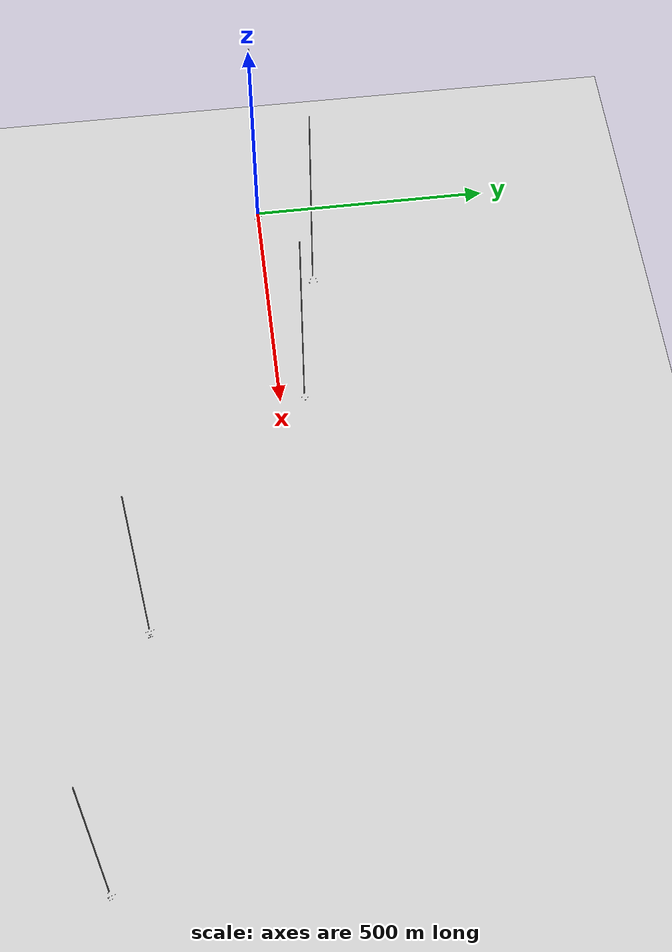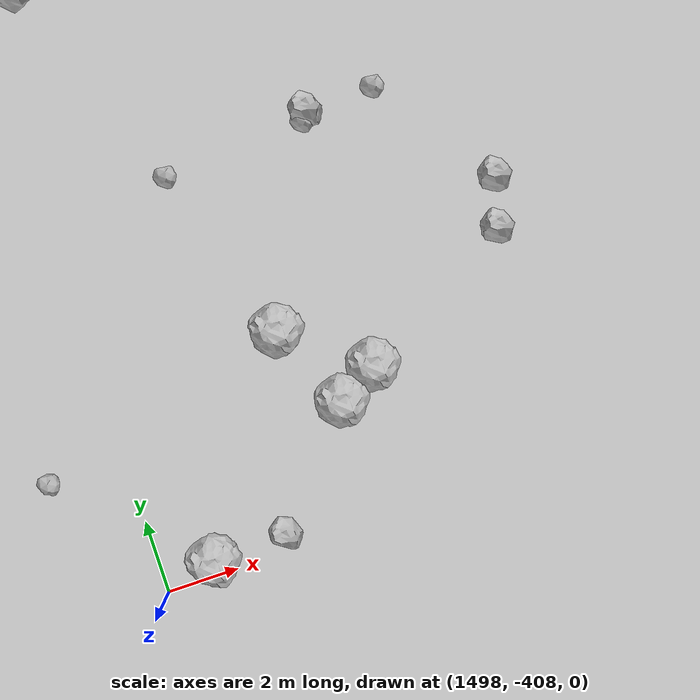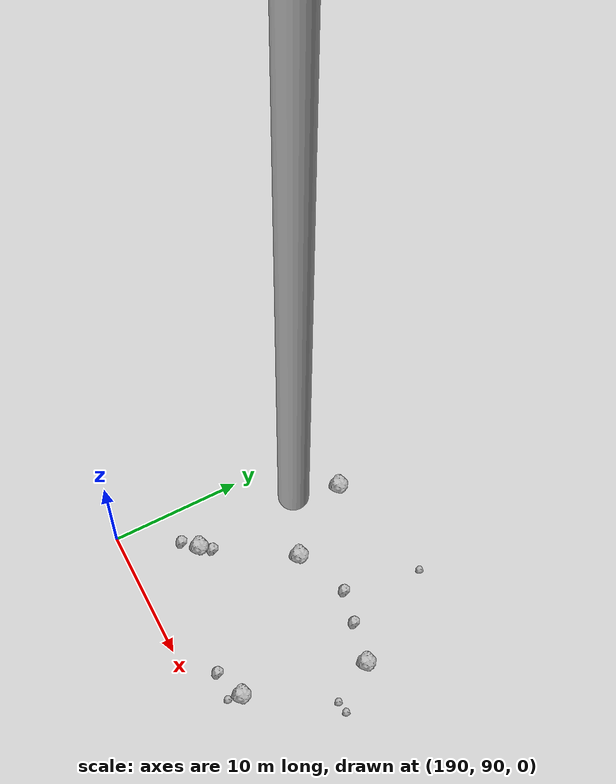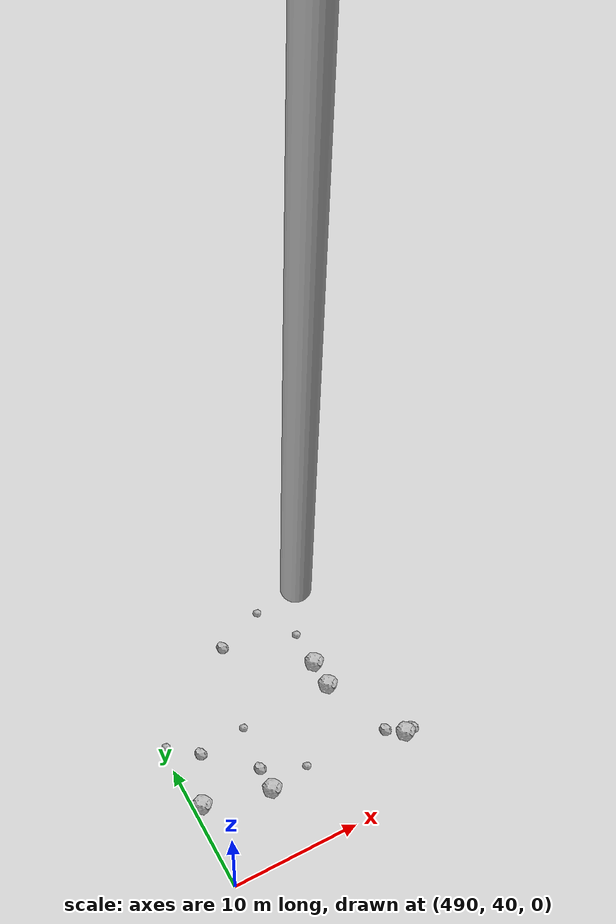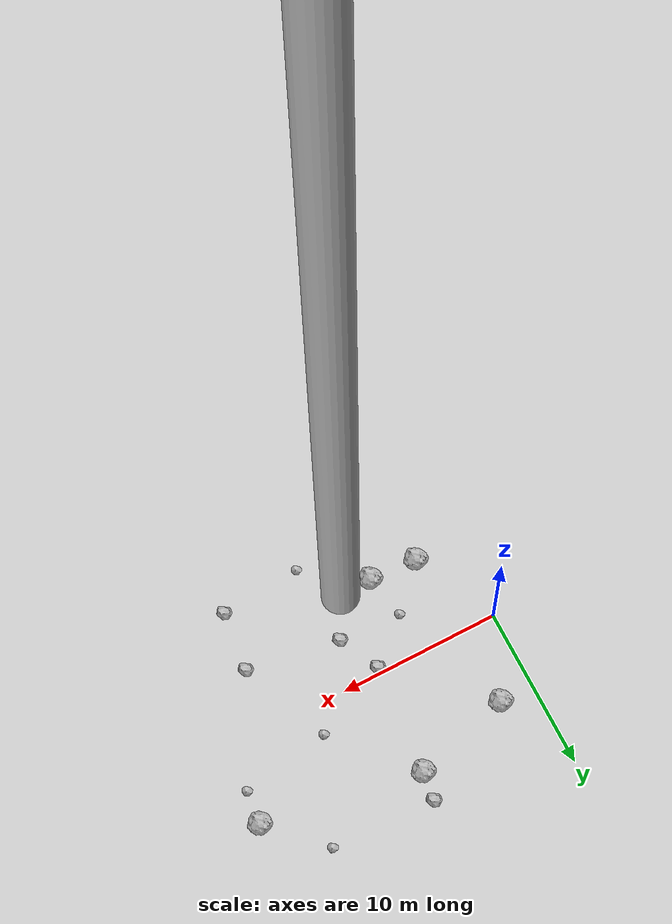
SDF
<?xml version="1.0" ?>
<sdf version="1.6">
  <world name="default">

    <include>
      <uri>model://custom_ground</uri>
    </include>

    <include>
      <uri>model://sun</uri>
    </include>

    <spherical_coordinates>
      <surface_model>EARTH_WGS84</surface_model>
      <latitude_deg>38.161479</latitude_deg>
      <longitude_deg>-122.454630</longitude_deg>
      <elevation>488.0</elevation>
      <heading_deg>90</heading_deg>
    </spherical_coordinates>

    <model name="rock1_0_0">
      <include>
        <uri>model://rock1</uri>
        <pose>2.49691382914639 -5.185970993650804 0.5 0 0 0</pose>
      </include>
    </model>
    <model name="rock1_0_1">
      <include>
        <uri>model://rock1</uri>
        <pose>5.457030801072622 -5.377328507619794 0.5 0 0 0</pose>
      </include>
    </model>
    <model name="rock1_0_2">
      <include>
        <uri>model://rock1</uri>
        <pose>18.023192851284488 4.771931585657557 0.5 0 0 0</pose>
      </include>
    </model>
    <model name="rock1_0_3">
      <include>
        <uri>model://rock1</uri>
        <pose>8.192478007171808 6.452641437040647 0.5 0 0 0</pose>
      </include>
    </model>
    <model name="rock1_0_4">
      <include>
        <uri>model://rock1</uri>
        <pose>2.1853988610647757 4.833900528092201 0.5 0 0 0</pose>
      </include>
    </model>
    <model name="rock2_0_0">
      <include>
        <uri>model://rock2</uri>
        <pose>8.403162183985184 8.225374960065182 0.3 0 0 0</pose>
      </include>
    </model>
    <model name="rock2_0_1">
      <include>
        <uri>model://rock2</uri>
        <pose>14.108420379822707 -7.554718473559172 0.3 0 0 0</pose>
      </include>
    </model>
    <model name="rock2_0_2">
      <include>
        <uri>model://rock2</uri>
        <pose>7.5663082122113074 -0.3660193078653684 0.3 0 0 0</pose>
      </include>
    </model>
    <model name="rock2_0_3">
      <include>
        <uri>model://rock2</uri>
        <pose>8.770806263497947 -2.886712398572689 0.3 0 0 0</pose>
      </include>
    </model>
    <model name="rock2_0_4">
      <include>
        <uri>model://rock2</uri>
        <pose>14.54697585942786 -3.8442471461178984 0.3 0 0 0</pose>
      </include>
    </model>
    <model name="rock3_0_0">
      <include>
        <uri>model://rock3</uri>
        <pose>4.873217700030741 -2.6784561590181095 0.2 0 0 0</pose>
      </include>
    </model>
    <model name="rock3_0_1">
      <include>
        <uri>model://rock3</uri>
        <pose>12.247655826506115 1.7380694075721124 0.2 0 0 0</pose>
      </include>
    </model>
    <model name="rock3_0_2">
      <include>
        <uri>model://rock3</uri>
        <pose>14.885690709837894 7.938822098273704 0.2 0 0 0</pose>
      </include>
    </model>
    <model name="rock3_0_3">
      <include>
        <uri>model://rock3</uri>
        <pose>9.071571451784424 -7.9811674118383324 0.2 0 0 0</pose>
      </include>
    </model>
    <model name="rock3_0_4">
      <include>
        <uri>model://rock3</uri>
        <pose>17.764236168002196 2.6600734198081426 0.2 0 0 0</pose>
      </include>
    </model>
    <model name="rock1_1_0">
      <include>
        <uri>model://rock1</uri>
        <pose>207.3088939812665 102.38550396893478 0.5 0 0 0</pose>
      </include>
    </model>
    <model name="rock1_1_1">
      <include>
        <uri>model://rock1</uri>
        <pose>197.56976707503367 101.72481515019122 0.5 0 0 0</pose>
      </include>
    </model>
    <model name="rock1_1_2">
      <include>
        <uri>model://rock1</uri>
        <pose>193.5329131800912 95.26961398625578 0.5 0 0 0</pose>
      </include>
    </model>
    <model name="rock1_1_3">
      <include>
        <uri>model://rock1</uri>
        <pose>193.83678306296355 107.03675688626724 0.5 0 0 0</pose>
      </include>
    </model>
    <model name="rock1_1_4">
      <include>
        <uri>model://rock1</uri>
        <pose>205.37977963935703 93.04475078943908 0.5 0 0 0</pose>
      </include>
    </model>
    <model name="rock2_1_0">
      <include>
        <uri>model://rock2</uri>
        <pose>204.08693382649764 103.01058529220414 0.3 0 0 0</pose>
      </include>
    </model>
    <model name="rock2_1_1">
      <include>
        <uri>model://rock2</uri>
        <pose>202.98960836901693 92.22037685920633 0.3 0 0 0</pose>
      </include>
    </model>
    <model name="rock2_1_2">
      <include>
        <uri>model://rock2</uri>
        <pose>201.5347245961518 103.50578626841413 0.3 0 0 0</pose>
      </include>
    </model>
    <model name="rock2_1_3">
      <include>
        <uri>model://rock2</uri>
        <pose>194.09497484959527 96.10364281308512 0.3 0 0 0</pose>
      </include>
    </model>
    <model name="rock2_1_4">
      <include>
        <uri>model://rock2</uri>
        <pose>192.50402078463404 94.26065421487472 0.3 0 0 0</pose>
      </include>
    </model>
    <model name="rock3_1_0">
      <include>
        <uri>model://rock3</uri>
        <pose>208.97839448446575 99.16722518880769 0.2 0 0 0</pose>
      </include>
    </model>
    <model name="rock3_1_1">
      <include>
        <uri>model://rock3</uri>
        <pose>205.15259126888688 91.98606452874236 0.2 0 0 0</pose>
      </include>
    </model>
    <model name="rock3_1_2">
      <include>
        <uri>model://rock3</uri>
        <pose>202.6079891121089 109.33978359242866 0.2 0 0 0</pose>
      </include>
    </model>
    <model name="rock3_1_3">
      <include>
        <uri>model://rock3</uri>
        <pose>192.45071091460144 104.0100305943953 0.2 0 0 0</pose>
      </include>
    </model>
    <model name="rock3_1_4">
      <include>
        <uri>model://rock3</uri>
        <pose>209.92185314933334 99.31396750585917 0.2 0 0 0</pose>
      </include>
    </model>
    <model name="rock1_2_0">
      <include>
        <uri>model://rock1</uri>
        <pose>495.8207878657438 45.22156913012449 0.5 0 0 0</pose>
      </include>
    </model>
    <model name="rock1_2_1">
      <include>
        <uri>model://rock1</uri>
        <pose>503.4784541092487 52.790306352747976 0.5 0 0 0</pose>
      </include>
    </model>
    <model name="rock1_2_2">
      <include>
        <uri>model://rock1</uri>
        <pose>506.7699317206543 44.52358139645293 0.5 0 0 0</pose>
      </include>
    </model>
    <model name="rock1_2_3">
      <include>
        <uri>model://rock1</uri>
        <pose>503.5121622606009 50.66062923466836 0.5 0 0 0</pose>
      </include>
    </model>
    <model name="rock1_2_4">
      <include>
        <uri>model://rock1</uri>
        <pose>490.6986967300618 46.49159591534028 0.5 0 0 0</pose>
      </include>
    </model>
    <model name="rock2_2_0">
      <include>
        <uri>model://rock2</uri>
        <pose>495.748395113199 47.10148067261539 0.3 0 0 0</pose>
      </include>
    </model>
    <model name="rock2_2_1">
      <include>
        <uri>model://rock2</uri>
        <pose>507.4166326457549 44.652899648090425 0.3 0 0 0</pose>
      </include>
    </model>
    <model name="rock2_2_2">
      <include>
        <uri>model://rock2</uri>
        <pose>505.51329567985 45.442415417846 0.3 0 0 0</pose>
      </include>
    </model>
    <model name="rock2_2_3">
      <include>
        <uri>model://rock2</uri>
        <pose>497.81069173069983 57.262734043941975 0.3 0 0 0</pose>
      </include>
    </model>
    <model name="rock2_2_4">
      <include>
        <uri>model://rock2</uri>
        <pose>492.38631331375336 50.1923417577717 0.3 0 0 0</pose>
      </include>
    </model>
    <model name="rock3_2_0">
      <include>
        <uri>model://rock3</uri>
        <pose>496.1663692521716 50.565347381348175 0.2 0 0 0</pose>
      </include>
    </model>
    <model name="rock3_2_1">
      <include>
        <uri>model://rock3</uri>
        <pose>498.9193570140547 45.65235782041193 0.2 0 0 0</pose>
      </include>
    </model>
    <model name="rock3_2_2">
      <include>
        <uri>model://rock3</uri>
        <pose>503.39826891307 55.591462556628365 0.2 0 0 0</pose>
      </include>
    </model>
    <model name="rock3_2_3">
      <include>
        <uri>model://rock3</uri>
        <pose>490.3271355117211 51.90150085727872 0.2 0 0 0</pose>
      </include>
    </model>
    <model name="rock3_2_4">
      <include>
        <uri>model://rock3</uri>
        <pose>501.5770716916819 58.67304508097959 0.2 0 0 0</pose>
      </include>
    </model>
    <model name="rock1_3_0">
      <include>
        <uri>model://rock1</uri>
        <pose>1007.3215007199846 -299.5825826830396 0.5 0 0 0</pose>
      </include>
    </model>
    <model name="rock1_3_1">
      <include>
        <uri>model://rock1</uri>
        <pose>1009.1699450173725 -302.83881617491096 0.5 0 0 0</pose>
      </include>
    </model>
    <model name="rock1_3_2">
      <include>
        <uri>model://rock1</uri>
        <pose>1001.9978518301585 -297.8128111907905 0.5 0 0 0</pose>
      </include>
    </model>
    <model name="rock1_3_3">
      <include>
        <uri>model://rock1</uri>
        <pose>1003.571412416109 -301.2047995261251 0.5 0 0 0</pose>
      </include>
    </model>
    <model name="rock1_3_4">
      <include>
        <uri>model://rock1</uri>
        <pose>993.8668292024942 -292.2579306276441 0.5 0 0 0</pose>
      </include>
    </model>
    <model name="rock2_3_0">
      <include>
        <uri>model://rock2</uri>
        <pose>996.3902798779815 -304.0495673317424 0.3 0 0 0</pose>
      </include>
    </model>
    <model name="rock2_3_1">
      <include>
        <uri>model://rock2</uri>
        <pose>1003.0135563670625 -302.3813381797902 0.3 0 0 0</pose>
      </include>
    </model>
    <model name="rock2_3_2">
      <include>
        <uri>model://rock2</uri>
        <pose>996.945126039694 -308.05534467261793 0.3 0 0 0</pose>
      </include>
    </model>
    <model name="rock2_3_3">
      <include>
        <uri>model://rock2</uri>
        <pose>996.2365026513702 -304.99173465467027 0.3 0 0 0</pose>
      </include>
    </model>
    <model name="rock2_3_4">
      <include>
        <uri>model://rock2</uri>
        <pose>995.5463539877965 -297.366567001055 0.3 0 0 0</pose>
      </include>
    </model>
    <model name="rock3_3_0">
      <include>
        <uri>model://rock3</uri>
        <pose>994.0513444842791 -298.9441081810705 0.2 0 0 0</pose>
      </include>
    </model>
    <model name="rock3_3_1">
      <include>
        <uri>model://rock3</uri>
        <pose>1003.9341682830229 -292.0616793664127 0.2 0 0 0</pose>
      </include>
    </model>
    <model name="rock3_3_2">
      <include>
        <uri>model://rock3</uri>
        <pose>994.9755594773676 -307.9022392662633 0.2 0 0 0</pose>
      </include>
    </model>
    <model name="rock3_3_3">
      <include>
        <uri>model://rock3</uri>
        <pose>1002.815021762188 -300.2947300121899 0.2 0 0 0</pose>
      </include>
    </model>
    <model name="rock3_3_4">
      <include>
        <uri>model://rock3</uri>
        <pose>1006.6891858247045 -295.6430127235012 0.2 0 0 0</pose>
      </include>
    </model>
    <model name="rock1_4_0">
      <include>
        <uri>model://rock1</uri>
        <pose>1504.11424222134 -404.4921302508432 0.5 0 0 0</pose>
      </include>
    </model>
    <model name="rock1_4_1">
      <include>
        <uri>model://rock1</uri>
        <pose>1499.3407234447423 -391.15430868497486 0.5 0 0 0</pose>
      </include>
    </model>
    <model name="rock1_4_2">
      <include>
        <uri>model://rock1</uri>
        <pose>1499.5619550516299 -407.442928442158 0.5 0 0 0</pose>
      </include>
    </model>
    <model name="rock1_4_3">
      <include>
        <uri>model://rock1</uri>
        <pose>1503.0621008953103 -402.1810956349015 0.5 0 0 0</pose>
      </include>
    </model>
    <model name="rock1_4_4">
      <include>
        <uri>model://rock1</uri>
        <pose>1505.2001136147205 -403.83967088333145 0.5 0 0 0</pose>
      </include>
    </model>
    <model name="rock2_4_0">
      <include>
        <uri>model://rock2</uri>
        <pose>1501.5589865674594 -407.4095225681148 0.3 0 0 0</pose>
      </include>
    </model>
    <model name="rock2_4_1">
      <include>
        <uri>model://rock2</uri>
        <pose>1509.5463144254754 -401.3960869407667 0.3 0 0 0</pose>
      </include>
    </model>
    <model name="rock2_4_2">
      <include>
        <uri>model://rock2</uri>
        <pose>1509.9184903721696 -400.05444954303533 0.3 0 0 0</pose>
      </include>
    </model>
    <model name="rock2_4_3">
      <include>
        <uri>model://rock2</uri>
        <pose>1505.644719579772 -396.79929353858887 0.3 0 0 0</pose>
      </include>
    </model>
    <model name="rock2_4_4">
      <include>
        <uri>model://rock2</uri>
        <pose>1494.9187725343768 -391.9038202603214 0.3 0 0 0</pose>
      </include>
    </model>
    <model name="rock3_4_0">
      <include>
        <uri>model://rock3</uri>
        <pose>1505.472175798493 -397.06230666993946 0.2 0 0 0</pose>
      </include>
    </model>
    <model name="rock3_4_1">
      <include>
        <uri>model://rock3</uri>
        <pose>1507.5543818318217 -396.7717158915088 0.2 0 0 0</pose>
      </include>
    </model>
    <model name="rock3_4_2">
      <include>
        <uri>model://rock3</uri>
        <pose>1503.6072964341247 -392.5641855606455 0.2 0 0 0</pose>
      </include>
    </model>
    <model name="rock3_4_3">
      <include>
        <uri>model://rock3</uri>
        <pose>1501.491596509163 -397.33337254781736 0.2 0 0 0</pose>
      </include>
    </model>
    <model name="rock3_4_4">
      <include>
        <uri>model://rock3</uri>
        <pose>1495.8841681339889 -404.2163223142237 0.2 0 0 0</pose>
      </include>
    </model>

    <model name="cylinder_1">
      <static>true</static>
      <link name="link">
        <visual name="visual">
          <geometry>
            <cylinder>
              <radius>1</radius>
              <length>500</length>
            </cylinder>
          </geometry>
        </visual>
      </link>
      <pose>10 0 270 0 0 0</pose>
    </model>

    <model name="cylinder_2">
      <static>true</static>
      <link name="link">
        <visual name="visual">
          <geometry>
            <cylinder>
              <radius>1</radius>
              <length>500</length>
            </cylinder>
          </geometry>
        </visual>
      </link>
      <pose>200 100 270 0 0 0</pose>
    </model>

    <model name="cylinder_3">
      <static>true</static>
      <link name="link">
        <visual name="visual">
          <geometry>
            <cylinder>
              <radius>1</radius>
              <length>500</length>
            </cylinder>
          </geometry>
        </visual>
      </link>
      <pose>500 50 270 0 0 0</pose>
    </model>

    <model name="cylinder_4">
      <static>true</static>
      <link name="link">
        <visual name="visual">
          <geometry>
            <cylinder>
              <radius>1</radius>
              <length>500</length>
            </cylinder>
          </geometry>
        </visual>
      </link>
      <pose>1000 -300 270 0 0 0</pose>
    </model>

    <model name="cylinder_5">
      <static>true</static>
      <link name="link">
        <visual name="visual">
          <geometry>
            <cylinder>
              <radius>1</radius>
              <length>500</length>
            </cylinder>
          </geometry>
        </visual>
      </link>
      <pose>1500 -400 270 0 0 0</pose>
    </model>

  </world>
</sdf>

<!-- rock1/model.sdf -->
<sdf version="1.6">
  <model name="rock1">
    <static>true</static> <!-- Set to true if the model should not move -->
    <pose>0 0 0 0 0 0</pose>

    <!--z offset is 0.5 for full scale-->

    <link name="link">
      <collision name="rock1_collision">
        <geometry>
          <mesh>
            <uri>model://meshes/rock1.dae</uri>
          </mesh>
        </geometry>
      </collision>
      <visual name="rock1_visual">
        <geometry>
          <mesh>
            <uri>model://meshes/rock1.dae</uri>
          </mesh>
        </geometry>
        <material>
          <script>
            <uri>model://materials/scripts/sand_pebbles.material</uri>
            <name>custom_ground/Image</name>
          </script>
        </material>
      </visual>
    </link>
  </model>
</sdf>

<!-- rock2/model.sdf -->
<sdf version="1.6">
  <model name="rock2">
    <static>true</static> <!-- Set to true if the model should not move -->
    <pose>0 0 0 0 0 0</pose>

    <!--z offset is 0.3 for full scale-->

    <link name="link">
      <collision name="rock2_collision">
        <geometry>
          <mesh>
            <uri>model://meshes/rock2.dae</uri>
          </mesh>
        </geometry>
      </collision>
      <visual name="rock2_visual">
        <geometry>
          <mesh>
            <uri>model://meshes/rock2.dae</uri>
          </mesh>
        </geometry>
        <material>
          <script>
            <uri>model://materials/scripts/sand_pebbles.material</uri>
            <name>custom_ground/Image</name>
          </script>
        </material>
      </visual>
    </link>
  </model>
</sdf>

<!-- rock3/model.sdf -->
<sdf version="1.6">
  <model name="rock3">
    <static>true</static> <!-- Set to true if the model should not move -->
    <pose>0 0 0 0 0 0</pose>

    <!--z offset is 0.2 for full scale-->

    <link name="link">
      <collision name="rock3_collision">
        <geometry>
          <mesh>
            <uri>model://meshes/rock3.dae</uri>
          </mesh>
        </geometry>
      </collision>
      <visual name="rock3_visual">
        <geometry>
          <mesh>
            <uri>model://meshes/rock3.dae</uri>
          </mesh>
        </geometry>
        <material>
          <script>
            <uri>model://materials/scripts/sand_pebbles.material</uri>
            <name>custom_ground/Image</name>
          </script>
        </material>
      </visual>
    </link>
  </model>
</sdf>

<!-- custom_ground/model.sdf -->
<sdf version="1.6">
  <model name="custom_ground">
    <static>true</static> <!-- Ground is static and immovable -->
    <link name="ground_link">
      <pose>240 0 0 0 0 0</pose> <!-- Position and orientation relative to the world -->
      <!-- Visual Representation -->
      <visual name="ground_visual">
        <geometry>
          <plane>
            <normal>0 0 1</normal> <!-- Upward facing plane -->
            <size>500 500</size> <!-- Size of the plane -->
          </plane>
        </geometry>
        <material>
          <script>
            <uri>model://materials/scripts/sand_pebbles.material</uri>
            <name>custom_ground/Image</name>
          </script>
        </material>
      </visual>

      <!-- Collision Representation -->
      <collision name="ground_collision">
        <geometry>
          <plane>
            <normal>0 0 1</normal>
            <size>100 100</size>
          </plane>
        </geometry>
      </collision>

    </link>
  </model>
</sdf>
